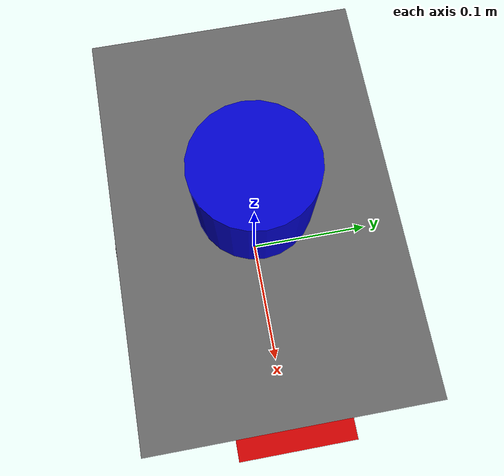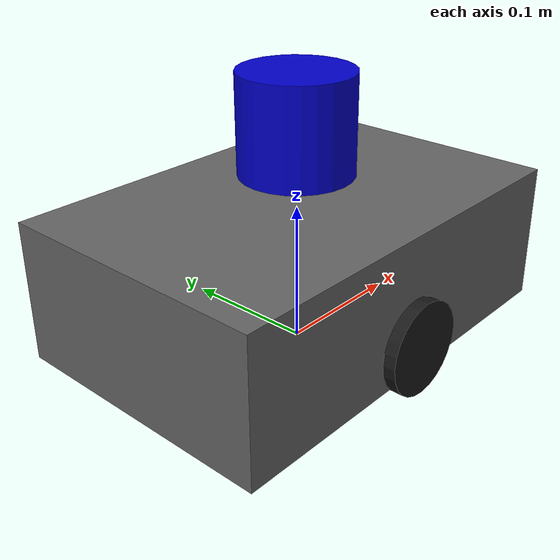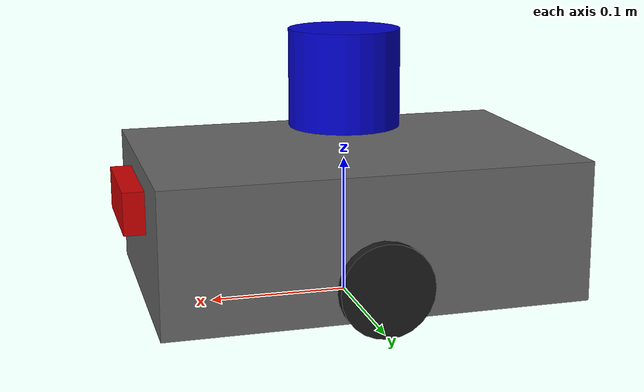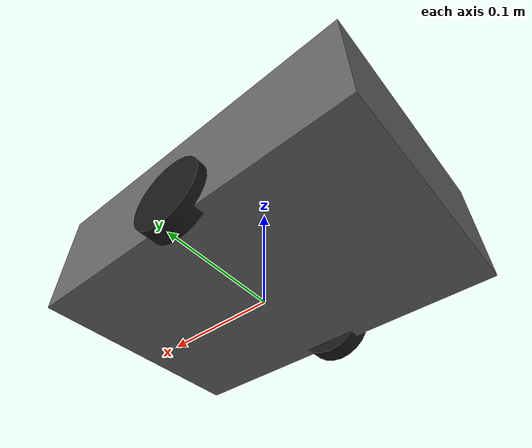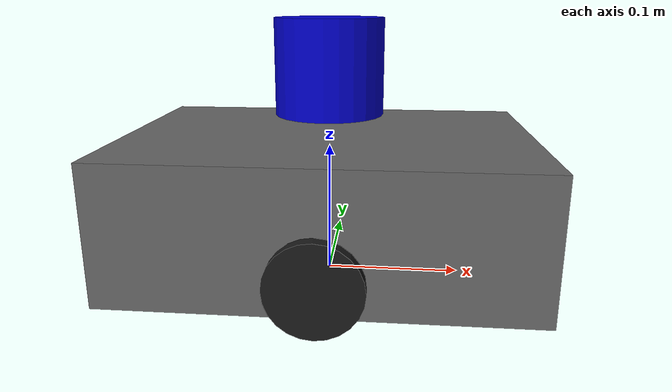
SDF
<?xml version="1.0" ?>
<sdf version="1.8">
  <model name="fusion_bot">
    <pose>0 0 0 0 0 0</pose>

    <!-- ==================== Links ==================== -->

    <link name="base_footprint"/>

    <!-- Chassis -->
    <link name="base_link">
      <inertial>
        <pose>0 0 0.06 0 0 0</pose>
        <mass>2.0</mass>
        <inertia>
          <ixx>8.33e-3</ixx>  <ixy>0</ixy>  <ixz>0</ixz>
          <iyy>1.67e-2</iyy>  <iyz>0</iyz>
          <izz>2.17e-2</izz>
        </inertia>
      </inertial>
      <collision name="base_collision">
        <pose>0 0 0.06 0 0 0</pose>
        <geometry>
          <box><size>0.30 0.20 0.10</size></box>
        </geometry>
      </collision>
      <visual name="base_visual">
        <pose>0 0 0.06 0 0 0</pose>
        <geometry>
          <box><size>0.30 0.20 0.10</size></box>
        </geometry>
        <material>
          <ambient>0.2 0.2 0.2 1.0</ambient>
          <diffuse>0.4 0.4 0.4 1.0</diffuse>
        </material>
      </visual>
    </link>

    <!-- Left wheel -->
    <link name="wheel_left_link">
      <inertial>
        <pose>0 0.10 0.033 -1.5708 0 0</pose>
        <mass>0.1</mass>
        <inertia>
          <ixx>3.0e-5</ixx>  <ixy>0</ixy>  <ixz>0</ixz>
          <iyy>3.0e-5</iyy>  <iyz>0</iyz>
          <izz>5.4e-5</izz>
        </inertia>
      </inertial>
      <collision name="wheel_left_collision">
        <pose>0 0.10 0.033 -1.5708 0 0</pose>
        <geometry>
          <cylinder><radius>0.033</radius><length>0.018</length></cylinder>
        </geometry>
        <surface>
          <friction>
            <ode><mu>100000</mu><mu2>100000</mu2></ode>
          </friction>
          <contact>
            <ode>
              <kp>1e5</kp><kd>1</kd>
              <max_vel>0.01</max_vel><min_depth>0.001</min_depth>
            </ode>
          </contact>
        </surface>
      </collision>
      <visual name="wheel_left_visual">
        <pose>0 0.10 0.033 -1.5708 0 0</pose>
        <geometry>
          <cylinder><radius>0.033</radius><length>0.018</length></cylinder>
        </geometry>
        <material>
          <ambient>0.1 0.1 0.1 1.0</ambient>
          <diffuse>0.1 0.1 0.1 1.0</diffuse>
        </material>
      </visual>
    </link>

    <!-- Right wheel -->
    <link name="wheel_right_link">
      <inertial>
        <pose>0 -0.10 0.033 -1.5708 0 0</pose>
        <mass>0.1</mass>
        <inertia>
          <ixx>3.0e-5</ixx>  <ixy>0</ixy>  <ixz>0</ixz>
          <iyy>3.0e-5</iyy>  <iyz>0</iyz>
          <izz>5.4e-5</izz>
        </inertia>
      </inertial>
      <collision name="wheel_right_collision">
        <pose>0 -0.10 0.033 -1.5708 0 0</pose>
        <geometry>
          <cylinder><radius>0.033</radius><length>0.018</length></cylinder>
        </geometry>
        <surface>
          <friction>
            <ode><mu>100000</mu><mu2>100000</mu2></ode>
          </friction>
          <contact>
            <ode>
              <kp>1e5</kp><kd>1</kd>
              <max_vel>0.01</max_vel><min_depth>0.001</min_depth>
            </ode>
          </contact>
        </surface>
      </collision>
      <visual name="wheel_right_visual">
        <pose>0 -0.10 0.033 -1.5708 0 0</pose>
        <geometry>
          <cylinder><radius>0.033</radius><length>0.018</length></cylinder>
        </geometry>
        <material>
          <ambient>0.1 0.1 0.1 1.0</ambient>
          <diffuse>0.1 0.1 0.1 1.0</diffuse>
        </material>
      </visual>
    </link>

    <!-- Rear caster (frictionless ball) -->
    <link name="caster_link">
      <pose>-0.12 0 0.006 0 0 0</pose>
      <inertial>
        <mass>0.01</mass>
        <inertia>
          <ixx>1e-6</ixx>  <ixy>0</ixy>  <ixz>0</ixz>
          <iyy>1e-6</iyy>  <iyz>0</iyz>
          <izz>1e-6</izz>
        </inertia>
      </inertial>
      <collision name="caster_collision">
        <geometry>
          <sphere><radius>0.01</radius></sphere>
        </geometry>
        <surface>
          <friction>
            <ode><mu>0</mu><mu2>0</mu2></ode>
          </friction>
          <contact>
            <ode>
              <kp>1e5</kp><kd>1</kd>
              <max_vel>0.01</max_vel><min_depth>0.001</min_depth>
            </ode>
          </contact>
        </surface>
      </collision>
    </link>

    <!-- IMU (massless, sensor only) -->
    <link name="imu_link">
      <sensor name="imu_sensor" type="imu">
        <always_on>true</always_on>
        <update_rate>200</update_rate>
        <topic>imu</topic>
        <gz_frame_id>imu_link</gz_frame_id>
        <imu>
          <angular_velocity>
            <x><noise type="gaussian"><mean>0</mean><stddev>2e-4</stddev></noise></x>
            <y><noise type="gaussian"><mean>0</mean><stddev>2e-4</stddev></noise></y>
            <z><noise type="gaussian"><mean>0</mean><stddev>2e-4</stddev></noise></z>
          </angular_velocity>
          <linear_acceleration>
            <x><noise type="gaussian"><mean>0</mean><stddev>1.7e-2</stddev></noise></x>
            <y><noise type="gaussian"><mean>0</mean><stddev>1.7e-2</stddev></noise></y>
            <z><noise type="gaussian"><mean>0</mean><stddev>1.7e-2</stddev></noise></z>
          </linear_acceleration>
        </imu>
      </sensor>
    </link>

    <!-- 3D LiDAR (VLP-16 style) -->
    <link name="lidar_link">
      <inertial>
        <pose>0 0 0.16 0 0 0</pose>
        <mass>0.5</mass>
        <inertia>
          <ixx>4.0e-4</ixx>  <ixy>0</ixy>  <ixz>0</ixz>
          <iyy>4.0e-4</iyy>  <iyz>0</iyz>
          <izz>4.0e-4</izz>
        </inertia>
      </inertial>
      <collision name="lidar_collision">
        <pose>0 0 0.16 0 0 0</pose>
        <geometry>
          <cylinder><radius>0.04</radius><length>0.07</length></cylinder>
        </geometry>
      </collision>
      <visual name="lidar_visual">
        <pose>0 0 0.16 0 0 0</pose>
        <geometry>
          <cylinder><radius>0.04</radius><length>0.07</length></cylinder>
        </geometry>
        <material>
          <ambient>0.0 0.0 0.8 1.0</ambient>
          <diffuse>0.0 0.0 0.8 1.0</diffuse>
        </material>
      </visual>
      <sensor name="velodyne_vlp16" type="gpu_lidar">
        <always_on>true</always_on>
        <visualize>true</visualize>
        <pose>0 0 0.16 0 0 0</pose>
        <update_rate>10</update_rate>
        <topic>lidar</topic>
        <gz_frame_id>lidar_link</gz_frame_id>
        <lidar>
          <scan>
            <horizontal>
              <samples>360</samples>
              <resolution>1</resolution>
              <min_angle>0</min_angle>
              <max_angle>6.28318</max_angle>
            </horizontal>
            <vertical>
              <samples>16</samples>
              <resolution>1</resolution>
              <min_angle>-0.261799</min_angle>
              <max_angle>0.261799</max_angle>
            </vertical>
          </scan>
          <range>
            <min>0.3</min>
            <max>100.0</max>
            <resolution>0.01</resolution>
          </range>
          <noise>
            <type>gaussian</type>
            <mean>0.0</mean>
            <stddev>0.01</stddev>
          </noise>
        </lidar>
      </sensor>
    </link>

    <!-- Camera -->
    <link name="camera_link"/>

    <link name="camera_rgb_frame">
      <inertial>
        <pose>0.15 0 0.08 0 0 0</pose>
        <mass>0.1</mass>
        <inertia>
          <ixx>6.1e-5</ixx>  <ixy>0</ixy>  <ixz>0</ixz>
          <iyy>1.5e-5</iyy>  <iyz>0</iyz>
          <izz>6.1e-5</izz>
        </inertia>
      </inertial>
      <collision name="camera_collision">
        <pose>0.15 0 0.08 0 0 0</pose>
        <geometry>
          <box><size>0.03 0.08 0.03</size></box>
        </geometry>
      </collision>
      <visual name="camera_visual">
        <pose>0.15 0 0.08 0 0 0</pose>
        <geometry>
          <box><size>0.03 0.08 0.03</size></box>
        </geometry>
        <material>
          <ambient>0.8 0.0 0.0 1.0</ambient>
          <diffuse>0.8 0.0 0.0 1.0</diffuse>
        </material>
      </visual>
      <sensor name="rgb_camera" type="camera">
        <always_on>true</always_on>
        <visualize>true</visualize>
        <update_rate>30</update_rate>
        <topic>camera/image_raw</topic>
        <gz_frame_id>camera_optical_frame</gz_frame_id>
        <camera name="front_camera">
          <camera_info_topic>camera/camera_info</camera_info_topic>
          <horizontal_fov>1.2217</horizontal_fov>
          <image>
            <width>640</width>
            <height>480</height>
            <format>R8G8B8</format>
          </image>
          <clip>
            <near>0.02</near>
            <far>300</far>
          </clip>
          <noise>
            <type>gaussian</type>
            <mean>0.0</mean>
            <stddev>0.007</stddev>
          </noise>
        </camera>
      </sensor>
    </link>

    <!-- ==================== Joints ==================== -->

    <joint name="base_joint" type="fixed">
      <parent>base_footprint</parent>
      <child>base_link</child>
      <pose>0 0 0.010 0 0 0</pose>
    </joint>

    <joint name="wheel_left_joint" type="revolute">
      <parent>base_link</parent>
      <child>wheel_left_link</child>
      <pose>0 0.10 0.033 -1.5708 0 0</pose>
      <axis>
        <xyz>0 0 1</xyz>
        <limit><effort>20</effort></limit>
      </axis>
    </joint>

    <joint name="wheel_right_joint" type="revolute">
      <parent>base_link</parent>
      <child>wheel_right_link</child>
      <pose>0 -0.10 0.033 -1.5708 0 0</pose>
      <axis>
        <xyz>0 0 1</xyz>
        <limit><effort>20</effort></limit>
      </axis>
    </joint>

    <joint name="caster_joint" type="ball">
      <parent>base_link</parent>
      <child>caster_link</child>
    </joint>

    <joint name="imu_joint" type="fixed">
      <parent>base_link</parent>
      <child>imu_link</child>
      <pose>0 0 0.06 0 0 0</pose>
    </joint>

    <joint name="lidar_joint" type="fixed">
      <parent>base_link</parent>
      <child>lidar_link</child>
      <pose>0 0 0.16 0 0 0</pose>
    </joint>

    <joint name="camera_joint" type="fixed">
      <parent>base_link</parent>
      <child>camera_link</child>
      <pose>0.15 0 0.08 0 0 0</pose>
    </joint>

    <joint name="camera_rgb_joint" type="fixed">
      <parent>camera_link</parent>
      <child>camera_rgb_frame</child>
    </joint>

    <!-- ==================== Plugins ==================== -->

    <plugin filename="gz-sim-diff-drive-system"
            name="gz::sim::systems::DiffDrive">
      <left_joint>wheel_left_joint</left_joint>
      <right_joint>wheel_right_joint</right_joint>
      <wheel_separation>0.20</wheel_separation>
      <wheel_radius>0.033</wheel_radius>
      <max_linear_acceleration>1.0</max_linear_acceleration>
      <topic>cmd_vel</topic>
      <odom_topic>odom</odom_topic>
      <frame_id>odom</frame_id>
      <child_frame_id>base_footprint</child_frame_id>
      <odom_publisher_frequency>30</odom_publisher_frequency>
      <tf_topic>/tf</tf_topic>
    </plugin>

    <plugin filename="gz-sim-joint-state-publisher-system"
            name="gz::sim::systems::JointStatePublisher">
      <topic>joint_states</topic>
      <joint_name>wheel_left_joint</joint_name>
      <joint_name>wheel_right_joint</joint_name>
    </plugin>

  </model>
</sdf>
